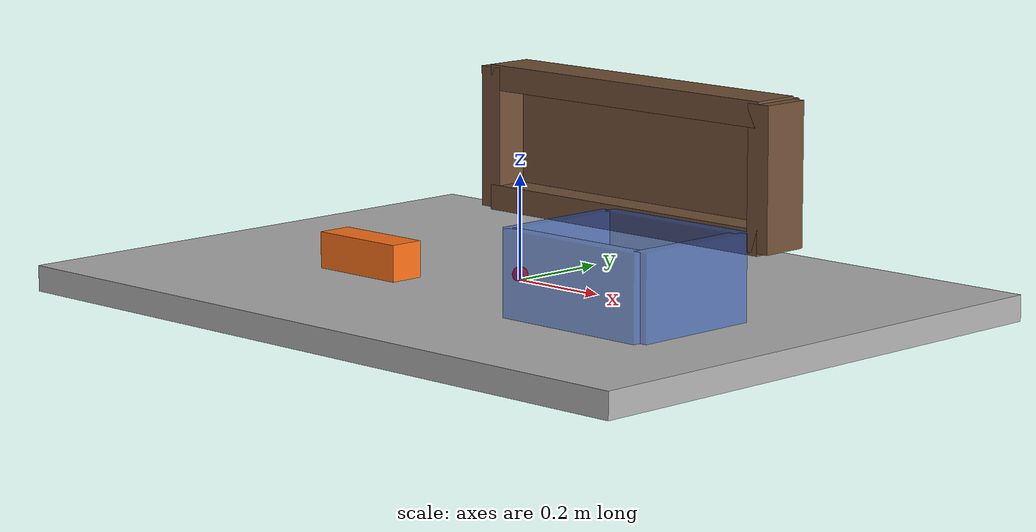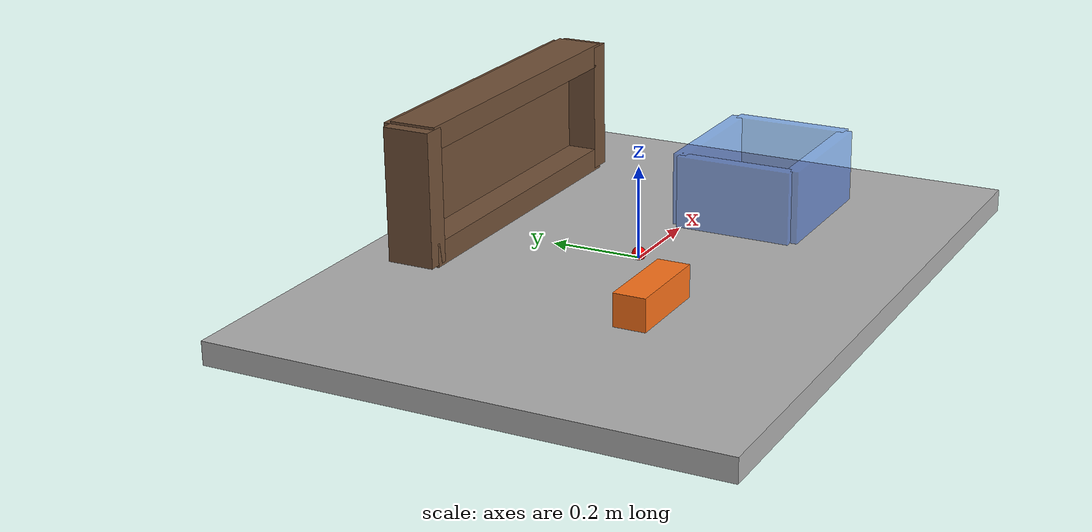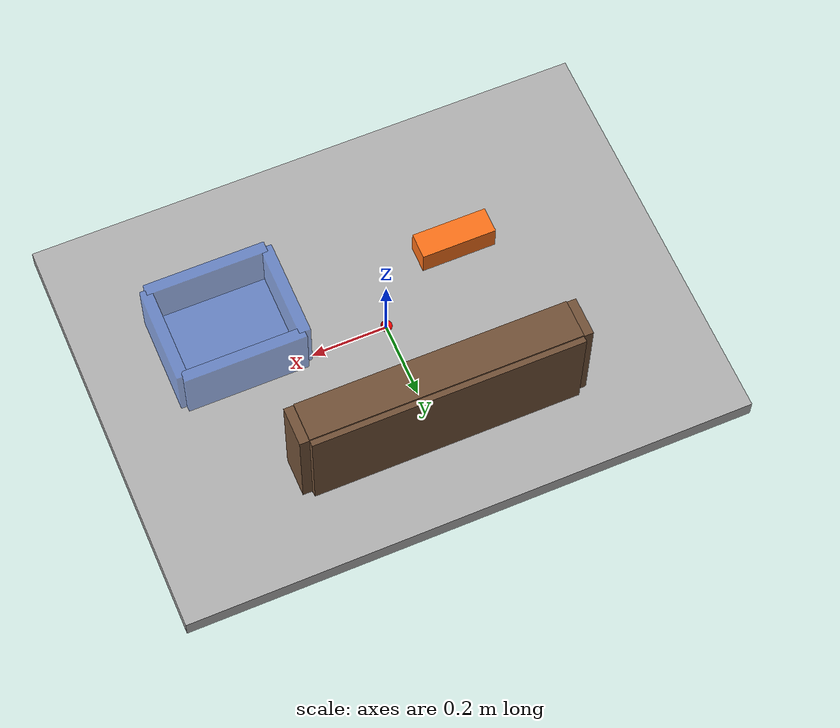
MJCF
<mujoco model="pose_sampling_poc">
  <option timestep="0.01" gravity="0 0 -9.81"/>

  <asset>
    <texture name="table_tex" type="2d" builtin="checker"
             rgb1="0.65 0.65 0.65" rgb2="0.75 0.75 0.75"
             width="64" height="64"/>
    <material name="table_mat" texture="table_tex"/>

    <material name="object_mat" rgba="1.0 0.45 0.1 1"/>
    <material name="shelf_mat" rgba="0.45 0.32 0.22 1"/>
    <material name="container_mat" rgba="0.1 0.35 0.9 0.45"/>
  </asset>

  <worldbody>
    <light pos="0 0 2.5" dir="0 0 -1"/>
    <camera name="overview" pos="0 -1.7 1.1" xyaxes="1 0 0 0 0.55 0.83"/>

    <site name="sample_center"
      pos="0 0 0.01"
      size="0.015"
      rgba="1 0 0 1"/>

    <!-- Table -->
    <geom name="table"
          type="box"
          pos="0 0 -0.025"
          size="0.75 0.55 0.025"
          material="table_mat"/>

    <!-- Shelf: placed at the back of the table -->
    <body name="shelf" pos="0 0.32 0">
      <!-- bottom board -->
      <geom name="shelf_bottom"
            type="box"
            pos="0 0 0.08"
            size="0.35 0.05 0.025"
            material="shelf_mat"/>

      <!-- top board -->
      <geom name="shelf_top"
            type="box"
            pos="0 0 0.32"
            size="0.35 0.05 0.025"
            material="shelf_mat"/>

      <!-- left side -->
      <geom name="shelf_left"
            type="box"
            pos="-0.35 0 0.20"
            size="0.025 0.05 0.14"
            material="shelf_mat"/>

      <!-- right side -->
      <geom name="shelf_right"
            type="box"
            pos="0.35 0 0.20"
            size="0.025 0.05 0.14"
            material="shelf_mat"/>

      <!-- back wall -->
      <geom name="shelf_back"
            type="box"
            pos="0 0.04 0.20"
            size="0.35 0.025 0.14"
            material="shelf_mat"/>
    </body>

    <!-- Open container/bin on right side of table -->
    <body name="container" pos="0.38 -0.12 0">
      <geom name="container_floor"
            type="box"
            pos="0 0 0.015"
            size="0.16 0.13 0.015"
            material="container_mat"/>

      <geom name="container_left_wall"
            type="box"
            pos="-0.16 0 0.08"
            size="0.015 0.13 0.08"
            material="container_mat"/>

      <geom name="container_right_wall"
            type="box"
            pos="0.16 0 0.08"
            size="0.015 0.13 0.08"
            material="container_mat"/>

      <geom name="container_front_wall"
            type="box"
            pos="0 -0.13 0.08"
            size="0.16 0.015 0.08"
            material="container_mat"/>

      <geom name="container_back_wall"
            type="box"
            pos="0 0.13 0.08"
            size="0.16 0.015 0.08"
            material="container_mat"/>
    </body>

    <!-- Manipulable rectangular object -->
    <body name="tracked_object" pos="-0.25 -0.15 0.035">
      <freejoint/>
      <geom name="tracked_object_geom"
            type="box"
            size="0.10 0.035 0.035"
            mass="0.2"
            friction="0.8 0.02 0.001"
            material="object_mat"/>
    </body>

    <!-- World axes -->
    <site name="world_origin" pos="0 0 0" size="0.01" rgba="1 1 1 1"/>
    <geom name="world_x_axis" type="capsule" fromto="0 0 0 0.15 0 0" size="0.003" rgba="1 0 0 1"/>
    <geom name="world_y_axis" type="capsule" fromto="0 0 0 0 0.15 0" size="0.003" rgba="0 1 0 1"/>
    <geom name="world_z_axis" type="capsule" fromto="0 0 0 0 0 0.15" size="0.003" rgba="0 0 1 1"/>
  </worldbody>
</mujoco>
